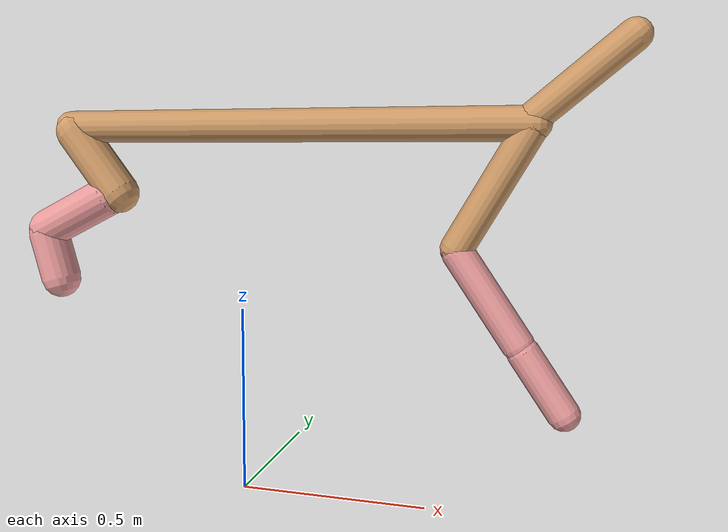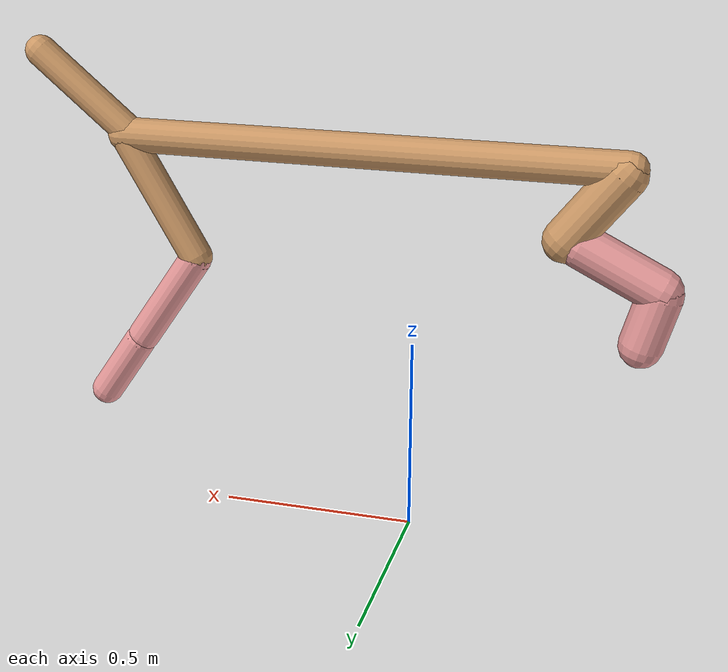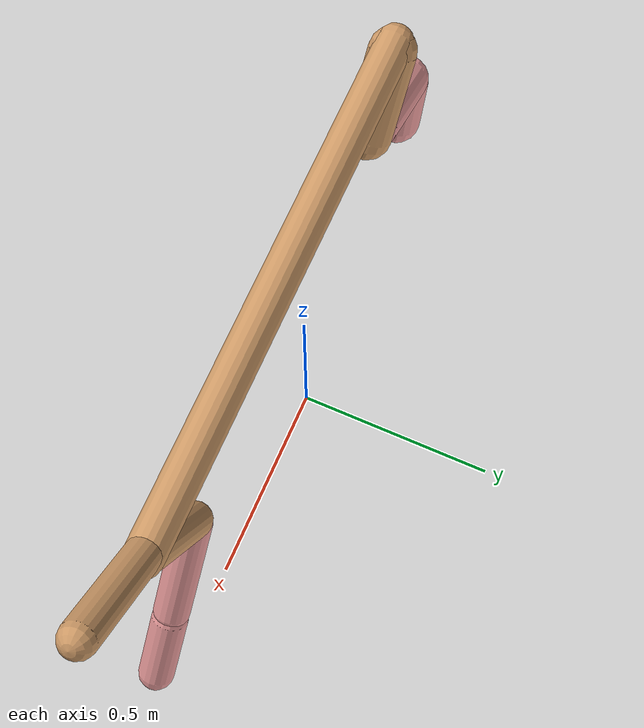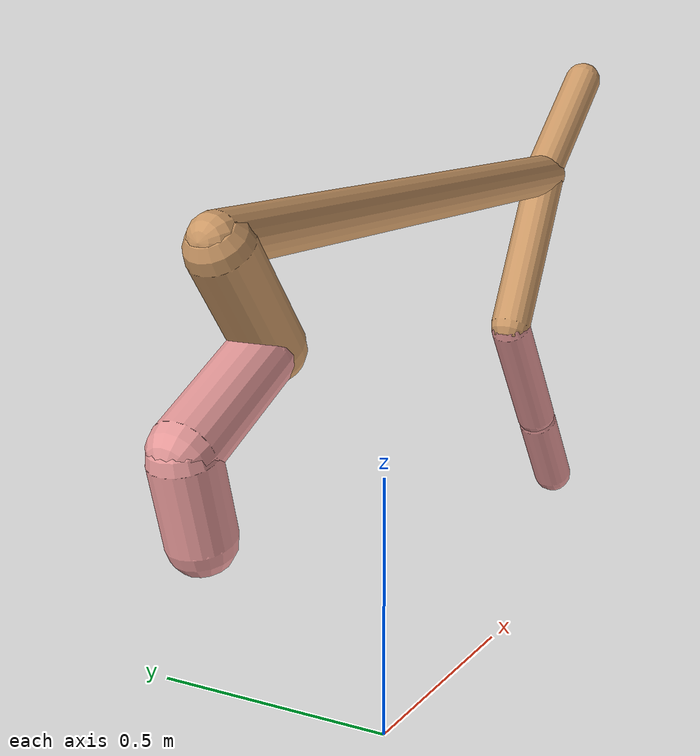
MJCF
<mujoco model="cheetah">
  <compiler angle="radian" coordinate="local" inertiafromgeom="true" settotalmass="14" />
  <default>
    <joint armature=".1" damping=".01" limited="true" solimplimit="0 .8 .03" solreflimit=".02 1" stiffness="8" />
    <geom conaffinity="0" condim="3" contype="1" friction="0.8 .1 .1" rgba="0.8 0.6 .4 1" solimp="0.0 0.8 0.01" solref="0.02 1" />
    <motor ctrllimited="true" ctrlrange="-1 1" />
  </default>
  <size nstack="300000" nuser_geom="1" />
  <option gravity="0 0 -9.81" timestep="0.01" />
  <worldbody>
    <body name="torso" pos="0.0 0.0 0.9858212283785952">
      <joint armature="0" axis="1 0 0" damping="0" limited="false" name="ignorex" pos="0 0 0" stiffness="0" type="slide" />
      <joint armature="0" axis="0 0 1" damping="0" limited="false" name="ignorez" pos="0 0 0" stiffness="0" type="slide" />
      <joint armature="0" axis="0 1 0" damping="0" limited="false" name="ignorey" pos="0 0 0" stiffness="0" type="hinge" />
      <geom fromto="-0.5 0.0 0.0 0.7419973846355122 0.0 0.0" name="torso" size="0.04295124908205505" type="capsule" />
      <geom axisangle="0 1 0 .87" name="head" pos="0.8419973846355123 0.0 0.1" size="0.039455286064520284 0.15" type="capsule" />

      <body name="bthigh" pos="-.5 0 0">
        <joint axis="0 1 0" damping="6" name="bthigh" pos="0 0 0" range="-.52 1.05" stiffness="240" type="hinge" />
        <geom axisangle="0 1 0 -3.8" name="bthigh" pos="0.07522617056672522 0.0 -0.09779402173674277" size="0.054794610081477985 0.10436789864303854" type="capsule" />
        <body name="bshin" pos="0.11045234113345043 0.0 -0.18558804347348554">
          <joint axis="0 1 0" damping="4.5" name="bshin" pos="0 0 0" range="-.785 .785" stiffness="180" type="hinge" />
          <geom axisangle="0 1 0 -2.03" name="bshin" pos="-0.10240435557124389 0.0 -0.051202177785621944" rgba="0.9 0.6 0.6 1" size="0.054794610081477985 0.10796679169969504" type="capsule" />
          <body name="bfoot" pos="-0.20480871114248778 0.0 -0.10240435557124389">
            <joint axis="0 1 0" damping="3" name="bfoot" pos="0 0 0" range="-.4 .785" stiffness="120" type="hinge" />
            <geom axisangle="0 1 0 -.27" name="bfoot" pos="0.022217088009722892 0.0 -0.07183525123143736" rgba="0.9 0.6 0.6 1" size="0.054794610081477985 0.06765918946514222" type="capsule" />
            <inertial mass="10" />
          </body>
        </body>
      </body>
      <body name="fthigh" pos="0.7419973846355123 0.0 0.0">
        <joint axis="0 1 0" damping="4.5" name="fthigh" pos="0 0 0" range="-1.5 0.8" stiffness="180" type="hinge" />
        <geom axisangle="0 1 0 .52" name="fthigh" pos="-0.09003584279930651 0.0 -0.15434715908452545" size="0.04139419443004249 0.17276383198154097" type="capsule" />
        <body name="fshin" pos="-0.18007168559861303 0.0 -0.3086943181690509">
          <joint axis="0 1 0" damping="3" name="fshin" pos="0 0 0" range="-1.2 1.1" stiffness="120" type="hinge" />
          <geom axisangle="0 1 0 -.6" name="fshin" pos="0.08355505931611822 0.0 -0.1156916205915483" rgba="0.9 0.6 0.6 1" size="0.04139419443004249 0.13769147511310784" type="capsule" />
          <body name="ffoot" pos="0.16711011863223643 0.0 -0.2313832411830966">
            <joint axis="0 1 0" damping="1.5" name="ffoot" pos="0 0 0" range="-3.1 -0.3" stiffness="60" type="hinge" />
            <geom axisangle="0 1 0 -.6" name="ffoot" pos="0.05631715473880672 0.0 -0.08760446292703268" rgba="0.9 0.6 0.6 1" size="0.04139419443004249 0.09092833262186367" type="capsule" />
            <inertial mass="10" />
          </body>
        </body>
      </body>
    </body>
  </worldbody>
  <actuator>
    <motor gear="120" joint="bthigh" name="bthigh" />
    <motor gear="90" joint="bshin" name="bshin" />
    <motor gear="60" joint="bfoot" name="bfoot" />
    <motor gear="120" joint="fthigh" name="fthigh" />
    <motor gear="60" joint="fshin" name="fshin" />
    <motor gear="30" joint="ffoot" name="ffoot" />
  </actuator>
</mujoco>
